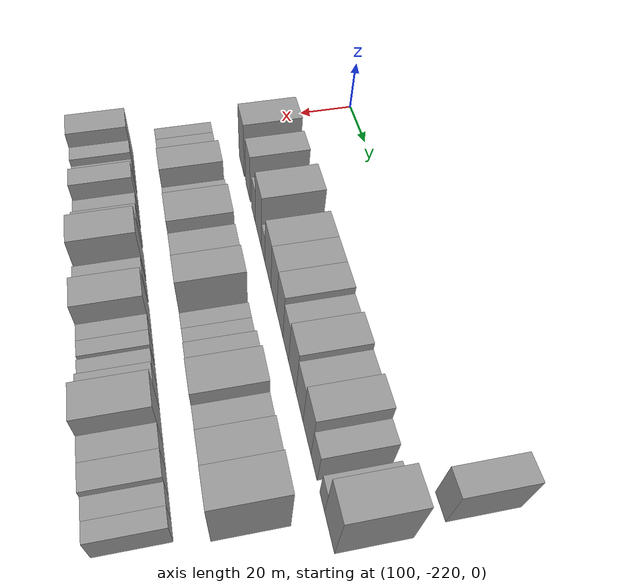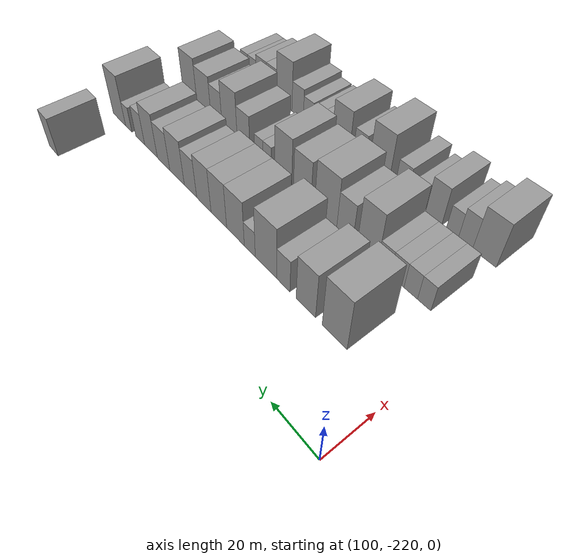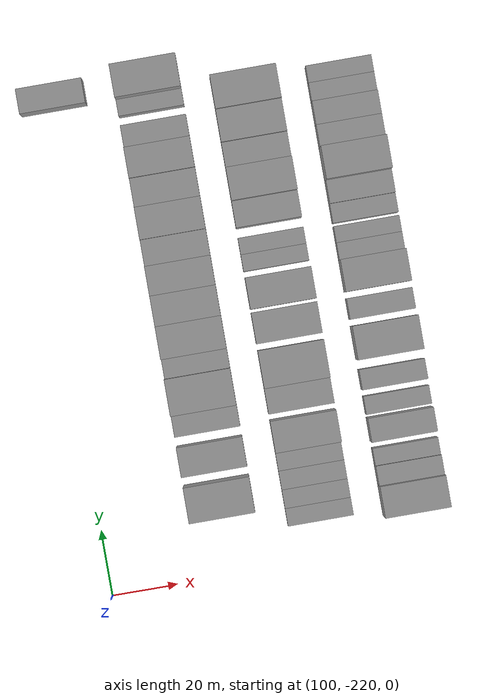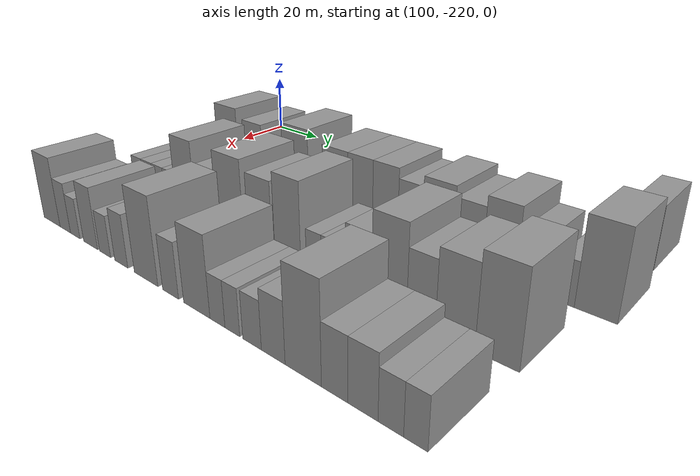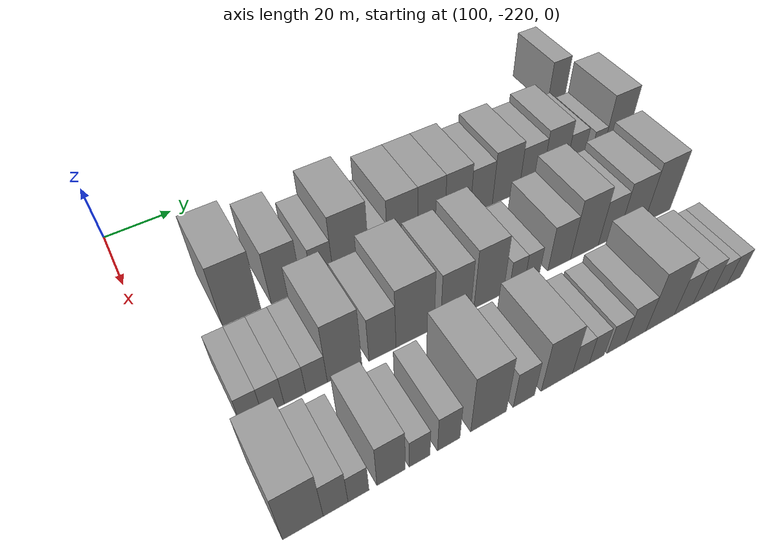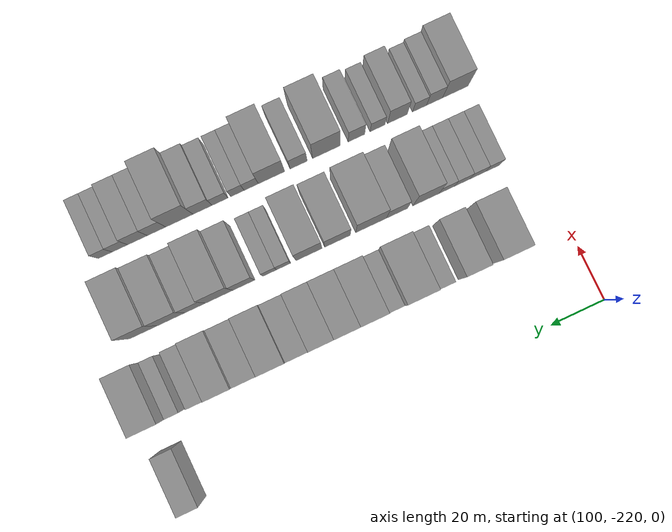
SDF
<sdf version="1.6">
 <world name="default">
  <model name="building_281">
   <static>1</static>
   <pose>108.0000 -68.3723 0 0.000000 0.000000 0.000000</pose>
   <link name="link">
    <pose>0 0 9.00 0 0 0</pose>
    <collision name="collision"><geometry><box><size>20.0000 7.5647 18.0000</size></box></geometry></collision>
    <visual name="visual">
     <cast_shadows>0</cast_shadows>
     <geometry><box><size>20.0000 7.5647 18.0000</size></box></geometry>
     <material>
      <script>
       <uri>model://grey_wall/materials/scripts</uri>
       <uri>model://grey_wall/materials/textures</uri>
       <name>vrc/grey_wall</name>
      </script>
     </material>
    </visual>
   </link>
  </model>
  <model name="building_375">
   <static>1</static>
   <pose>137.0000 -196.0511 0 0.000000 0.000000 0.000000</pose>
   <link name="link">
    <pose>0 0 12.00 0 0 0</pose>
    <collision name="collision"><geometry><box><size>20.0000 10.8290 24.0000</size></box></geometry></collision>
    <visual name="visual">
     <cast_shadows>0</cast_shadows>
     <geometry><box><size>20.0000 10.8290 24.0000</size></box></geometry>
     <material>
      <script>
       <uri>model://grey_wall/materials/scripts</uri>
       <uri>model://grey_wall/materials/textures</uri>
       <name>vrc/grey_wall</name>
      </script>
     </material>
    </visual>
   </link>
  </model>
  <model name="building_376">
   <static>1</static>
   <pose>137.0000 -183.1055 0 0.000000 0.000000 0.000000</pose>
   <link name="link">
    <pose>0 0 10.50 0 0 0</pose>
    <collision name="collision"><geometry><box><size>20.0000 9.0621 21.0000</size></box></geometry></collision>
    <visual name="visual">
     <cast_shadows>0</cast_shadows>
     <geometry><box><size>20.0000 9.0621 21.0000</size></box></geometry>
     <material>
      <script>
       <uri>model://grey_wall/materials/scripts</uri>
       <uri>model://grey_wall/materials/textures</uri>
       <name>vrc/grey_wall</name>
      </script>
     </material>
    </visual>
   </link>
  </model>
  <model name="building_377">
   <static>1</static>
   <pose>137.0000 -172.3008 0 0.000000 0.000000 0.000000</pose>
   <link name="link">
    <pose>0 0 7.50 0 0 0</pose>
    <collision name="collision"><geometry><box><size>20.0000 6.5472 15.0000</size></box></geometry></collision>
    <visual name="visual">
     <cast_shadows>0</cast_shadows>
     <geometry><box><size>20.0000 6.5472 15.0000</size></box></geometry>
     <material>
      <script>
       <uri>model://grey_wall/materials/scripts</uri>
       <uri>model://grey_wall/materials/textures</uri>
       <name>vrc/grey_wall</name>
      </script>
     </material>
    </visual>
   </link>
  </model>
  <model name="building_378">
   <static>1</static>
   <pose>137.0000 -163.4289 0 0.000000 0.000000 0.000000</pose>
   <link name="link">
    <pose>0 0 12.00 0 0 0</pose>
    <collision name="collision"><geometry><box><size>20.0000 11.1966 24.0000</size></box></geometry></collision>
    <visual name="visual">
     <cast_shadows>0</cast_shadows>
     <geometry><box><size>20.0000 11.1966 24.0000</size></box></geometry>
     <material>
      <script>
       <uri>model://grey_wall/materials/scripts</uri>
       <uri>model://grey_wall/materials/textures</uri>
       <name>vrc/grey_wall</name>
      </script>
     </material>
    </visual>
   </link>
  </model>
  <model name="building_379">
   <static>1</static>
   <pose>137.0000 -154.8506 0 0.000000 0.000000 0.000000</pose>
   <link name="link">
    <pose>0 0 6.00 0 0 0</pose>
    <collision name="collision"><geometry><box><size>20.0000 5.9600 12.0000</size></box></geometry></collision>
    <visual name="visual">
     <cast_shadows>0</cast_shadows>
     <geometry><box><size>20.0000 5.9600 12.0000</size></box></geometry>
     <material>
      <script>
       <uri>model://grey_wall/materials/scripts</uri>
       <uri>model://grey_wall/materials/textures</uri>
       <name>vrc/grey_wall</name>
      </script>
     </material>
    </visual>
   </link>
  </model>
  <model name="building_380">
   <static>1</static>
   <pose>137.0000 -146.8664 0 0.000000 0.000000 0.000000</pose>
   <link name="link">
    <pose>0 0 10.50 0 0 0</pose>
    <collision name="collision"><geometry><box><size>20.0000 10.0086 21.0000</size></box></geometry></collision>
    <visual name="visual">
     <cast_shadows>0</cast_shadows>
     <geometry><box><size>20.0000 10.0086 21.0000</size></box></geometry>
     <material>
      <script>
       <uri>model://grey_wall/materials/scripts</uri>
       <uri>model://grey_wall/materials/textures</uri>
       <name>vrc/grey_wall</name>
      </script>
     </material>
    </visual>
   </link>
  </model>
  <model name="building_381">
   <static>1</static>
   <pose>137.0000 -137.2171 0 0.000000 0.000000 0.000000</pose>
   <link name="link">
    <pose>0 0 10.50 0 0 0</pose>
    <collision name="collision"><geometry><box><size>20.0000 9.2900 21.0000</size></box></geometry></collision>
    <visual name="visual">
     <cast_shadows>0</cast_shadows>
     <geometry><box><size>20.0000 9.2900 21.0000</size></box></geometry>
     <material>
      <script>
       <uri>model://grey_wall/materials/scripts</uri>
       <uri>model://grey_wall/materials/textures</uri>
       <name>vrc/grey_wall</name>
      </script>
     </material>
    </visual>
   </link>
  </model>
  <model name="building_382">
   <static>1</static>
   <pose>137.0000 -128.0735 0 0.000000 0.000000 0.000000</pose>
   <link name="link">
    <pose>0 0 10.50 0 0 0</pose>
    <collision name="collision"><geometry><box><size>20.0000 8.9971 21.0000</size></box></geometry></collision>
    <visual name="visual">
     <cast_shadows>0</cast_shadows>
     <geometry><box><size>20.0000 8.9971 21.0000</size></box></geometry>
     <material>
      <script>
       <uri>model://grey_wall/materials/scripts</uri>
       <uri>model://grey_wall/materials/textures</uri>
       <name>vrc/grey_wall</name>
      </script>
     </material>
    </visual>
   </link>
  </model>
  <model name="building_383">
   <static>1</static>
   <pose>137.0000 -119.5507 0 0.000000 0.000000 0.000000</pose>
   <link name="link">
    <pose>0 0 9.00 0 0 0</pose>
    <collision name="collision"><geometry><box><size>20.0000 8.0484 18.0000</size></box></geometry></collision>
    <visual name="visual">
     <cast_shadows>0</cast_shadows>
     <geometry><box><size>20.0000 8.0484 18.0000</size></box></geometry>
     <material>
      <script>
       <uri>model://grey_wall/materials/scripts</uri>
       <uri>model://grey_wall/materials/textures</uri>
       <name>vrc/grey_wall</name>
      </script>
     </material>
    </visual>
   </link>
  </model>
  <model name="building_384">
   <static>1</static>
   <pose>137.0000 -110.5878 0 0.000000 0.000000 0.000000</pose>
   <link name="link">
    <pose>0 0 10.50 0 0 0</pose>
    <collision name="collision"><geometry><box><size>20.0000 9.8775 21.0000</size></box></geometry></collision>
    <visual name="visual">
     <cast_shadows>0</cast_shadows>
     <geometry><box><size>20.0000 9.8775 21.0000</size></box></geometry>
     <material>
      <script>
       <uri>model://grey_wall/materials/scripts</uri>
       <uri>model://grey_wall/materials/textures</uri>
       <name>vrc/grey_wall</name>
      </script>
     </material>
    </visual>
   </link>
  </model>
  <model name="building_385">
   <static>1</static>
   <pose>137.0000 -101.2459 0 0.000000 0.000000 0.000000</pose>
   <link name="link">
    <pose>0 0 9.00 0 0 0</pose>
    <collision name="collision"><geometry><box><size>20.0000 8.8063 18.0000</size></box></geometry></collision>
    <visual name="visual">
     <cast_shadows>0</cast_shadows>
     <geometry><box><size>20.0000 8.8063 18.0000</size></box></geometry>
     <material>
      <script>
       <uri>model://grey_wall/materials/scripts</uri>
       <uri>model://grey_wall/materials/textures</uri>
       <name>vrc/grey_wall</name>
      </script>
     </material>
    </visual>
   </link>
  </model>
  <model name="building_386">
   <static>1</static>
   <pose>137.0000 -92.1467 0 0.000000 0.000000 0.000000</pose>
   <link name="link">
    <pose>0 0 10.50 0 0 0</pose>
    <collision name="collision"><geometry><box><size>20.0000 9.3921 21.0000</size></box></geometry></collision>
    <visual name="visual">
     <cast_shadows>0</cast_shadows>
     <geometry><box><size>20.0000 9.3921 21.0000</size></box></geometry>
     <material>
      <script>
       <uri>model://grey_wall/materials/scripts</uri>
       <uri>model://grey_wall/materials/textures</uri>
       <name>vrc/grey_wall</name>
      </script>
     </material>
    </visual>
   </link>
  </model>
  <model name="building_387">
   <static>1</static>
   <pose>137.0000 -84.0024 0 0.000000 0.000000 0.000000</pose>
   <link name="link">
    <pose>0 0 7.50 0 0 0</pose>
    <collision name="collision"><geometry><box><size>20.0000 6.8966 15.0000</size></box></geometry></collision>
    <visual name="visual">
     <cast_shadows>0</cast_shadows>
     <geometry><box><size>20.0000 6.8966 15.0000</size></box></geometry>
     <material>
      <script>
       <uri>model://grey_wall/materials/scripts</uri>
       <uri>model://grey_wall/materials/textures</uri>
       <name>vrc/grey_wall</name>
      </script>
     </material>
    </visual>
   </link>
  </model>
  <model name="building_388">
   <static>1</static>
   <pose>137.0000 -75.0271 0 0.000000 0.000000 0.000000</pose>
   <link name="link">
    <pose>0 0 6.00 0 0 0</pose>
    <collision name="collision"><geometry><box><size>20.0000 5.0540 12.0000</size></box></geometry></collision>
    <visual name="visual">
     <cast_shadows>0</cast_shadows>
     <geometry><box><size>20.0000 5.0540 12.0000</size></box></geometry>
     <material>
      <script>
       <uri>model://grey_wall/materials/scripts</uri>
       <uri>model://grey_wall/materials/textures</uri>
       <name>vrc/grey_wall</name>
      </script>
     </material>
    </visual>
   </link>
  </model>
  <model name="building_389">
   <static>1</static>
   <pose>137.0000 -67.4796 0 0.000000 0.000000 0.000000</pose>
   <link name="link">
    <pose>0 0 12.00 0 0 0</pose>
    <collision name="collision"><geometry><box><size>20.0000 10.0409 24.0000</size></box></geometry></collision>
    <visual name="visual">
     <cast_shadows>0</cast_shadows>
     <geometry><box><size>20.0000 10.0409 24.0000</size></box></geometry>
     <material>
      <script>
       <uri>model://grey_wall/materials/scripts</uri>
       <uri>model://grey_wall/materials/textures</uri>
       <name>vrc/grey_wall</name>
      </script>
     </material>
    </visual>
   </link>
  </model>
  <model name="building_484">
   <static>1</static>
   <pose>166.0000 -205.1478 0 0.000000 0.000000 0.000000</pose>
   <link name="link">
    <pose>0 0 6.00 0 0 0</pose>
    <collision name="collision"><geometry><box><size>20.0000 5.4146 12.0000</size></box></geometry></collision>
    <visual name="visual">
     <cast_shadows>0</cast_shadows>
     <geometry><box><size>20.0000 5.4146 12.0000</size></box></geometry>
     <material>
      <script>
       <uri>model://grey_wall/materials/scripts</uri>
       <uri>model://grey_wall/materials/textures</uri>
       <name>vrc/grey_wall</name>
      </script>
     </material>
    </visual>
   </link>
  </model>
  <model name="building_485">
   <static>1</static>
   <pose>166.0000 -199.5939 0 0.000000 0.000000 0.000000</pose>
   <link name="link">
    <pose>0 0 6.00 0 0 0</pose>
    <collision name="collision"><geometry><box><size>20.0000 5.6932 12.0000</size></box></geometry></collision>
    <visual name="visual">
     <cast_shadows>0</cast_shadows>
     <geometry><box><size>20.0000 5.6932 12.0000</size></box></geometry>
     <material>
      <script>
       <uri>model://grey_wall/materials/scripts</uri>
       <uri>model://grey_wall/materials/textures</uri>
       <name>vrc/grey_wall</name>
      </script>
     </material>
    </visual>
   </link>
  </model>
  <model name="building_486">
   <static>1</static>
   <pose>166.0000 -193.8655 0 0.000000 0.000000 0.000000</pose>
   <link name="link">
    <pose>0 0 6.00 0 0 0</pose>
    <collision name="collision"><geometry><box><size>20.0000 5.7635 12.0000</size></box></geometry></collision>
    <visual name="visual">
     <cast_shadows>0</cast_shadows>
     <geometry><box><size>20.0000 5.7635 12.0000</size></box></geometry>
     <material>
      <script>
       <uri>model://grey_wall/materials/scripts</uri>
       <uri>model://grey_wall/materials/textures</uri>
       <name>vrc/grey_wall</name>
      </script>
     </material>
    </visual>
   </link>
  </model>
  <model name="building_487">
   <static>1</static>
   <pose>166.0000 -188.0762 0 0.000000 0.000000 0.000000</pose>
   <link name="link">
    <pose>0 0 6.00 0 0 0</pose>
    <collision name="collision"><geometry><box><size>20.0000 5.8152 12.0000</size></box></geometry></collision>
    <visual name="visual">
     <cast_shadows>0</cast_shadows>
     <geometry><box><size>20.0000 5.8152 12.0000</size></box></geometry>
     <material>
      <script>
       <uri>model://grey_wall/materials/scripts</uri>
       <uri>model://grey_wall/materials/textures</uri>
       <name>vrc/grey_wall</name>
      </script>
     </material>
    </visual>
   </link>
  </model>
  <model name="building_488">
   <static>1</static>
   <pose>166.0000 -180.3485 0 0.000000 0.000000 0.000000</pose>
   <link name="link">
    <pose>0 0 12.00 0 0 0</pose>
    <collision name="collision"><geometry><box><size>20.0000 9.6402 24.0000</size></box></geometry></collision>
    <visual name="visual">
     <cast_shadows>0</cast_shadows>
     <geometry><box><size>20.0000 9.6402 24.0000</size></box></geometry>
     <material>
      <script>
       <uri>model://grey_wall/materials/scripts</uri>
       <uri>model://grey_wall/materials/textures</uri>
       <name>vrc/grey_wall</name>
      </script>
     </material>
    </visual>
   </link>
  </model>
  <model name="building_489">
   <static>1</static>
   <pose>166.0000 -169.5950 0 0.000000 0.000000 0.000000</pose>
   <link name="link">
    <pose>0 0 9.00 0 0 0</pose>
    <collision name="collision"><geometry><box><size>20.0000 7.8668 18.0000</size></box></geometry></collision>
    <visual name="visual">
     <cast_shadows>0</cast_shadows>
     <geometry><box><size>20.0000 7.8668 18.0000</size></box></geometry>
     <material>
      <script>
       <uri>model://grey_wall/materials/scripts</uri>
       <uri>model://grey_wall/materials/textures</uri>
       <name>vrc/grey_wall</name>
      </script>
     </material>
    </visual>
   </link>
  </model>
  <model name="building_490">
   <static>1</static>
   <pose>166.0000 -159.9276 0 0.000000 0.000000 0.000000</pose>
   <link name="link">
    <pose>0 0 12.00 0 0 0</pose>
    <collision name="collision"><geometry><box><size>20.0000 11.4679 24.0000</size></box></geometry></collision>
    <visual name="visual">
     <cast_shadows>0</cast_shadows>
     <geometry><box><size>20.0000 11.4679 24.0000</size></box></geometry>
     <material>
      <script>
       <uri>model://grey_wall/materials/scripts</uri>
       <uri>model://grey_wall/materials/textures</uri>
       <name>vrc/grey_wall</name>
      </script>
     </material>
    </visual>
   </link>
  </model>
  <model name="building_491">
   <static>1</static>
   <pose>166.0000 -147.4486 0 0.000000 0.000000 0.000000</pose>
   <link name="link">
    <pose>0 0 10.50 0 0 0</pose>
    <collision name="collision"><geometry><box><size>20.0000 9.4901 21.0000</size></box></geometry></collision>
    <visual name="visual">
     <cast_shadows>0</cast_shadows>
     <geometry><box><size>20.0000 9.4901 21.0000</size></box></geometry>
     <material>
      <script>
       <uri>model://grey_wall/materials/scripts</uri>
       <uri>model://grey_wall/materials/textures</uri>
       <name>vrc/grey_wall</name>
      </script>
     </material>
    </visual>
   </link>
  </model>
  <model name="building_492">
   <static>1</static>
   <pose>166.0000 -136.8996 0 0.000000 0.000000 0.000000</pose>
   <link name="link">
    <pose>0 0 12.00 0 0 0</pose>
    <collision name="collision"><geometry><box><size>20.0000 9.6079 24.0000</size></box></geometry></collision>
    <visual name="visual">
     <cast_shadows>0</cast_shadows>
     <geometry><box><size>20.0000 9.6079 24.0000</size></box></geometry>
     <material>
      <script>
       <uri>model://grey_wall/materials/scripts</uri>
       <uri>model://grey_wall/materials/textures</uri>
       <name>vrc/grey_wall</name>
      </script>
     </material>
    </visual>
   </link>
  </model>
  <model name="building_493">
   <static>1</static>
   <pose>166.0000 -127.5094 0 0.000000 0.000000 0.000000</pose>
   <link name="link">
    <pose>0 0 6.00 0 0 0</pose>
    <collision name="collision"><geometry><box><size>20.0000 5.1725 12.0000</size></box></geometry></collision>
    <visual name="visual">
     <cast_shadows>0</cast_shadows>
     <geometry><box><size>20.0000 5.1725 12.0000</size></box></geometry>
     <material>
      <script>
       <uri>model://grey_wall/materials/scripts</uri>
       <uri>model://grey_wall/materials/textures</uri>
       <name>vrc/grey_wall</name>
      </script>
     </material>
    </visual>
   </link>
  </model>
  <model name="building_494">
   <static>1</static>
   <pose>166.0000 -122.4040 0 0.000000 0.000000 0.000000</pose>
   <link name="link">
    <pose>0 0 6.00 0 0 0</pose>
    <collision name="collision"><geometry><box><size>20.0000 5.0383 12.0000</size></box></geometry></collision>
    <visual name="visual">
     <cast_shadows>0</cast_shadows>
     <geometry><box><size>20.0000 5.0383 12.0000</size></box></geometry>
     <material>
      <script>
       <uri>model://grey_wall/materials/scripts</uri>
       <uri>model://grey_wall/materials/textures</uri>
       <name>vrc/grey_wall</name>
      </script>
     </material>
    </visual>
   </link>
  </model>
  <model name="building_495">
   <static>1</static>
   <pose>166.0000 -112.8321 0 0.000000 0.000000 0.000000</pose>
   <link name="link">
    <pose>0 0 9.00 0 0 0</pose>
    <collision name="collision"><geometry><box><size>20.0000 8.1055 18.0000</size></box></geometry></collision>
    <visual name="visual">
     <cast_shadows>0</cast_shadows>
     <geometry><box><size>20.0000 8.1055 18.0000</size></box></geometry>
     <material>
      <script>
       <uri>model://grey_wall/materials/scripts</uri>
       <uri>model://grey_wall/materials/textures</uri>
       <name>vrc/grey_wall</name>
      </script>
     </material>
    </visual>
   </link>
  </model>
  <model name="building_496">
   <static>1</static>
   <pose>166.0000 -103.7379 0 0.000000 0.000000 0.000000</pose>
   <link name="link">
    <pose>0 0 12.00 0 0 0</pose>
    <collision name="collision"><geometry><box><size>20.0000 10.0830 24.0000</size></box></geometry></collision>
    <visual name="visual">
     <cast_shadows>0</cast_shadows>
     <geometry><box><size>20.0000 10.0830 24.0000</size></box></geometry>
     <material>
      <script>
       <uri>model://grey_wall/materials/scripts</uri>
       <uri>model://grey_wall/materials/textures</uri>
       <name>vrc/grey_wall</name>
      </script>
     </material>
    </visual>
   </link>
  </model>
  <model name="building_497">
   <static>1</static>
   <pose>166.0000 -94.8346 0 0.000000 0.000000 0.000000</pose>
   <link name="link">
    <pose>0 0 9.00 0 0 0</pose>
    <collision name="collision"><geometry><box><size>20.0000 7.7237 18.0000</size></box></geometry></collision>
    <visual name="visual">
     <cast_shadows>0</cast_shadows>
     <geometry><box><size>20.0000 7.7237 18.0000</size></box></geometry>
     <material>
      <script>
       <uri>model://grey_wall/materials/scripts</uri>
       <uri>model://grey_wall/materials/textures</uri>
       <name>vrc/grey_wall</name>
      </script>
     </material>
    </visual>
   </link>
  </model>
  <model name="building_498">
   <static>1</static>
   <pose>166.0000 -86.0075 0 0.000000 0.000000 0.000000</pose>
   <link name="link">
    <pose>0 0 10.50 0 0 0</pose>
    <collision name="collision"><geometry><box><size>20.0000 9.9305 21.0000</size></box></geometry></collision>
    <visual name="visual">
     <cast_shadows>0</cast_shadows>
     <geometry><box><size>20.0000 9.9305 21.0000</size></box></geometry>
     <material>
      <script>
       <uri>model://grey_wall/materials/scripts</uri>
       <uri>model://grey_wall/materials/textures</uri>
       <name>vrc/grey_wall</name>
      </script>
     </material>
    </visual>
   </link>
  </model>
  <model name="building_499">
   <static>1</static>
   <pose>166.0000 -75.8857 0 0.000000 0.000000 0.000000</pose>
   <link name="link">
    <pose>0 0 12.00 0 0 0</pose>
    <collision name="collision"><geometry><box><size>20.0000 10.3131 24.0000</size></box></geometry></collision>
    <visual name="visual">
     <cast_shadows>0</cast_shadows>
     <geometry><box><size>20.0000 10.3131 24.0000</size></box></geometry>
     <material>
      <script>
       <uri>model://grey_wall/materials/scripts</uri>
       <uri>model://grey_wall/materials/textures</uri>
       <name>vrc/grey_wall</name>
      </script>
     </material>
    </visual>
   </link>
  </model>
  <model name="building_598">
   <static>1</static>
   <pose>195.0000 -205.2724 0 0.000000 0.000000 0.000000</pose>
   <link name="link">
    <pose>0 0 10.50 0 0 0</pose>
    <collision name="collision"><geometry><box><size>20.0000 9.6130 21.0000</size></box></geometry></collision>
    <visual name="visual">
     <cast_shadows>0</cast_shadows>
     <geometry><box><size>20.0000 9.6130 21.0000</size></box></geometry>
     <material>
      <script>
       <uri>model://grey_wall/materials/scripts</uri>
       <uri>model://grey_wall/materials/textures</uri>
       <name>vrc/grey_wall</name>
      </script>
     </material>
    </visual>
   </link>
  </model>
  <model name="building_599">
   <static>1</static>
   <pose>195.0000 -197.4465 0 0.000000 0.000000 0.000000</pose>
   <link name="link">
    <pose>0 0 7.50 0 0 0</pose>
    <collision name="collision"><geometry><box><size>20.0000 6.0387 15.0000</size></box></geometry></collision>
    <visual name="visual">
     <cast_shadows>0</cast_shadows>
     <geometry><box><size>20.0000 6.0387 15.0000</size></box></geometry>
     <material>
      <script>
       <uri>model://grey_wall/materials/scripts</uri>
       <uri>model://grey_wall/materials/textures</uri>
       <name>vrc/grey_wall</name>
      </script>
     </material>
    </visual>
   </link>
  </model>
  <model name="building_600">
   <static>1</static>
   <pose>195.0000 -191.8072 0 0.000000 0.000000 0.000000</pose>
   <link name="link">
    <pose>0 0 6.00 0 0 0</pose>
    <collision name="collision"><geometry><box><size>20.0000 5.2400 12.0000</size></box></geometry></collision>
    <visual name="visual">
     <cast_shadows>0</cast_shadows>
     <geometry><box><size>20.0000 5.2400 12.0000</size></box></geometry>
     <material>
      <script>
       <uri>model://grey_wall/materials/scripts</uri>
       <uri>model://grey_wall/materials/textures</uri>
       <name>vrc/grey_wall</name>
      </script>
     </material>
    </visual>
   </link>
  </model>
  <model name="building_601">
   <static>1</static>
   <pose>195.0000 -183.5156 0 0.000000 0.000000 0.000000</pose>
   <link name="link">
    <pose>0 0 9.00 0 0 0</pose>
    <collision name="collision"><geometry><box><size>20.0000 7.3433 18.0000</size></box></geometry></collision>
    <visual name="visual">
     <cast_shadows>0</cast_shadows>
     <geometry><box><size>20.0000 7.3433 18.0000</size></box></geometry>
     <material>
      <script>
       <uri>model://grey_wall/materials/scripts</uri>
       <uri>model://grey_wall/materials/textures</uri>
       <name>vrc/grey_wall</name>
      </script>
     </material>
    </visual>
   </link>
  </model>
  <model name="building_602">
   <static>1</static>
   <pose>195.0000 -176.0654 0 0.000000 0.000000 0.000000</pose>
   <link name="link">
    <pose>0 0 6.00 0 0 0</pose>
    <collision name="collision"><geometry><box><size>20.0000 5.5571 12.0000</size></box></geometry></collision>
    <visual name="visual">
     <cast_shadows>0</cast_shadows>
     <geometry><box><size>20.0000 5.5571 12.0000</size></box></geometry>
     <material>
      <script>
       <uri>model://grey_wall/materials/scripts</uri>
       <uri>model://grey_wall/materials/textures</uri>
       <name>vrc/grey_wall</name>
      </script>
     </material>
    </visual>
   </link>
  </model>
  <model name="building_603">
   <static>1</static>
   <pose>195.0000 -168.1896 0 0.000000 0.000000 0.000000</pose>
   <link name="link">
    <pose>0 0 7.50 0 0 0</pose>
    <collision name="collision"><geometry><box><size>20.0000 6.1944 15.0000</size></box></geometry></collision>
    <visual name="visual">
     <cast_shadows>0</cast_shadows>
     <geometry><box><size>20.0000 6.1944 15.0000</size></box></geometry>
     <material>
      <script>
       <uri>model://grey_wall/materials/scripts</uri>
       <uri>model://grey_wall/materials/textures</uri>
       <name>vrc/grey_wall</name>
      </script>
     </material>
    </visual>
   </link>
  </model>
  <model name="building_604">
   <static>1</static>
   <pose>195.0000 -156.9490 0 0.000000 0.000000 0.000000</pose>
   <link name="link">
    <pose>0 0 12.00 0 0 0</pose>
    <collision name="collision"><geometry><box><size>20.0000 10.2869 24.0000</size></box></geometry></collision>
    <visual name="visual">
     <cast_shadows>0</cast_shadows>
     <geometry><box><size>20.0000 10.2869 24.0000</size></box></geometry>
     <material>
      <script>
       <uri>model://grey_wall/materials/scripts</uri>
       <uri>model://grey_wall/materials/textures</uri>
       <name>vrc/grey_wall</name>
      </script>
     </material>
    </visual>
   </link>
  </model>
  <model name="building_605">
   <static>1</static>
   <pose>195.0000 -146.6033 0 0.000000 0.000000 0.000000</pose>
   <link name="link">
    <pose>0 0 7.50 0 0 0</pose>
    <collision name="collision"><geometry><box><size>20.0000 6.4046 15.0000</size></box></geometry></collision>
    <visual name="visual">
     <cast_shadows>0</cast_shadows>
     <geometry><box><size>20.0000 6.4046 15.0000</size></box></geometry>
     <material>
      <script>
       <uri>model://grey_wall/materials/scripts</uri>
       <uri>model://grey_wall/materials/textures</uri>
       <name>vrc/grey_wall</name>
      </script>
     </material>
    </visual>
   </link>
  </model>
  <model name="building_606">
   <static>1</static>
   <pose>195.0000 -136.4965 0 0.000000 0.000000 0.000000</pose>
   <link name="link">
    <pose>0 0 10.50 0 0 0</pose>
    <collision name="collision"><geometry><box><size>20.0000 9.8089 21.0000</size></box></geometry></collision>
    <visual name="visual">
     <cast_shadows>0</cast_shadows>
     <geometry><box><size>20.0000 9.8089 21.0000</size></box></geometry>
     <material>
      <script>
       <uri>model://grey_wall/materials/scripts</uri>
       <uri>model://grey_wall/materials/textures</uri>
       <name>vrc/grey_wall</name>
      </script>
     </material>
    </visual>
   </link>
  </model>
  <model name="building_607">
   <static>1</static>
   <pose>195.0000 -128.9537 0 0.000000 0.000000 0.000000</pose>
   <link name="link">
    <pose>0 0 6.00 0 0 0</pose>
    <collision name="collision"><geometry><box><size>20.0000 5.2767 12.0000</size></box></geometry></collision>
    <visual name="visual">
     <cast_shadows>0</cast_shadows>
     <geometry><box><size>20.0000 5.2767 12.0000</size></box></geometry>
     <material>
      <script>
       <uri>model://grey_wall/materials/scripts</uri>
       <uri>model://grey_wall/materials/textures</uri>
       <name>vrc/grey_wall</name>
      </script>
     </material>
    </visual>
   </link>
  </model>
  <model name="building_608">
   <static>1</static>
   <pose>195.0000 -123.8383 0 0.000000 0.000000 0.000000</pose>
   <link name="link">
    <pose>0 0 6.00 0 0 0</pose>
    <collision name="collision"><geometry><box><size>20.0000 4.9541 12.0000</size></box></geometry></collision>
    <visual name="visual">
     <cast_shadows>0</cast_shadows>
     <geometry><box><size>20.0000 4.9541 12.0000</size></box></geometry>
     <material>
      <script>
       <uri>model://grey_wall/materials/scripts</uri>
       <uri>model://grey_wall/materials/textures</uri>
       <name>vrc/grey_wall</name>
      </script>
     </material>
    </visual>
   </link>
  </model>
  <model name="building_609">
   <static>1</static>
   <pose>195.0000 -117.4055 0 0.000000 0.000000 0.000000</pose>
   <link name="link">
    <pose>0 0 6.00 0 0 0</pose>
    <collision name="collision"><geometry><box><size>20.0000 5.9115 12.0000</size></box></geometry></collision>
    <visual name="visual">
     <cast_shadows>0</cast_shadows>
     <geometry><box><size>20.0000 5.9115 12.0000</size></box></geometry>
     <material>
      <script>
       <uri>model://grey_wall/materials/scripts</uri>
       <uri>model://grey_wall/materials/textures</uri>
       <name>vrc/grey_wall</name>
      </script>
     </material>
    </visual>
   </link>
  </model>
  <model name="building_610">
   <static>1</static>
   <pose>195.0000 -110.8842 0 0.000000 0.000000 0.000000</pose>
   <link name="link">
    <pose>0 0 7.50 0 0 0</pose>
    <collision name="collision"><geometry><box><size>20.0000 7.1310 15.0000</size></box></geometry></collision>
    <visual name="visual">
     <cast_shadows>0</cast_shadows>
     <geometry><box><size>20.0000 7.1310 15.0000</size></box></geometry>
     <material>
      <script>
       <uri>model://grey_wall/materials/scripts</uri>
       <uri>model://grey_wall/materials/textures</uri>
       <name>vrc/grey_wall</name>
      </script>
     </material>
    </visual>
   </link>
  </model>
  <model name="building_611">
   <static>1</static>
   <pose>195.0000 -102.2784 0 0.000000 0.000000 0.000000</pose>
   <link name="link">
    <pose>0 0 12.00 0 0 0</pose>
    <collision name="collision"><geometry><box><size>20.0000 10.0805 24.0000</size></box></geometry></collision>
    <visual name="visual">
     <cast_shadows>0</cast_shadows>
     <geometry><box><size>20.0000 10.0805 24.0000</size></box></geometry>
     <material>
      <script>
       <uri>model://grey_wall/materials/scripts</uri>
       <uri>model://grey_wall/materials/textures</uri>
       <name>vrc/grey_wall</name>
      </script>
     </material>
    </visual>
   </link>
  </model>
  <model name="building_612">
   <static>1</static>
   <pose>195.0000 -93.8338 0 0.000000 0.000000 0.000000</pose>
   <link name="link">
    <pose>0 0 7.50 0 0 0</pose>
    <collision name="collision"><geometry><box><size>20.0000 6.8088 15.0000</size></box></geometry></collision>
    <visual name="visual">
     <cast_shadows>0</cast_shadows>
     <geometry><box><size>20.0000 6.8088 15.0000</size></box></geometry>
     <material>
      <script>
       <uri>model://grey_wall/materials/scripts</uri>
       <uri>model://grey_wall/materials/textures</uri>
       <name>vrc/grey_wall</name>
      </script>
     </material>
    </visual>
   </link>
  </model>
  <model name="building_613">
   <static>1</static>
   <pose>195.0000 -86.8240 0 0.000000 0.000000 0.000000</pose>
   <link name="link">
    <pose>0 0 7.50 0 0 0</pose>
    <collision name="collision"><geometry><box><size>20.0000 7.2106 15.0000</size></box></geometry></collision>
    <visual name="visual">
     <cast_shadows>0</cast_shadows>
     <geometry><box><size>20.0000 7.2106 15.0000</size></box></geometry>
     <material>
      <script>
       <uri>model://grey_wall/materials/scripts</uri>
       <uri>model://grey_wall/materials/textures</uri>
       <name>vrc/grey_wall</name>
      </script>
     </material>
    </visual>
   </link>
  </model>
  <model name="building_614">
   <static>1</static>
   <pose>195.0000 -80.3550 0 0.000000 0.000000 0.000000</pose>
   <link name="link">
    <pose>0 0 6.00 0 0 0</pose>
    <collision name="collision"><geometry><box><size>20.0000 5.7275 12.0000</size></box></geometry></collision>
    <visual name="visual">
     <cast_shadows>0</cast_shadows>
     <geometry><box><size>20.0000 5.7275 12.0000</size></box></geometry>
     <material>
      <script>
       <uri>model://grey_wall/materials/scripts</uri>
       <uri>model://grey_wall/materials/textures</uri>
       <name>vrc/grey_wall</name>
      </script>
     </material>
    </visual>
   </link>
  </model>
  <model name="building_615">
   <static>1</static>
   <pose>195.0000 -74.9016 0 0.000000 0.000000 0.000000</pose>
   <link name="link">
    <pose>0 0 6.00 0 0 0</pose>
    <collision name="collision"><geometry><box><size>20.0000 5.1793 12.0000</size></box></geometry></collision>
    <visual name="visual">
     <cast_shadows>0</cast_shadows>
     <geometry><box><size>20.0000 5.1793 12.0000</size></box></geometry>
     <material>
      <script>
       <uri>model://grey_wall/materials/scripts</uri>
       <uri>model://grey_wall/materials/textures</uri>
       <name>vrc/grey_wall</name>
      </script>
     </material>
    </visual>
   </link>
  </model>
 </world>
</sdf>
